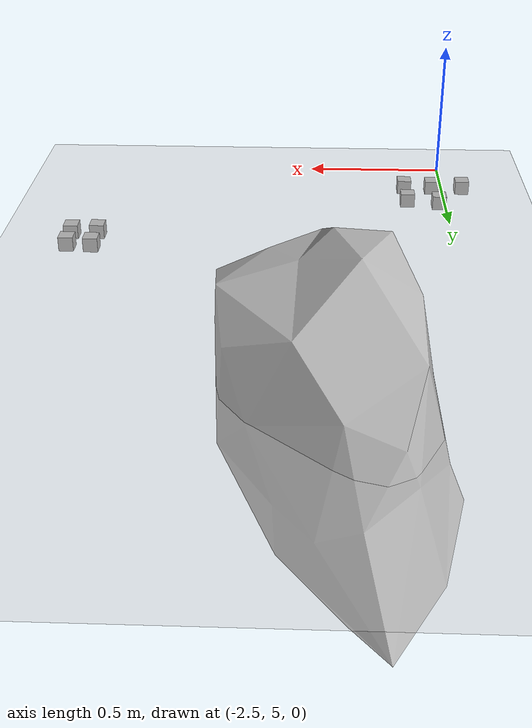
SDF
<sdf version="1.6">
 <world name="default">
  <model name="boulder2_2_clone_clone_0">
   <link name="link_1">
    <inertial>
     <mass>1</mass>
     <inertia>
      <ixx>0.166667</ixx>
      <ixy>0</ixy>
      <ixz>0</ixz>
      <iyy>0.166667</iyy>
      <iyz>0</iyz>
      <izz>0.166667</izz>
     </inertia>
    </inertial>
    <visual name="visual">
     <geometry><mesh><uri>model://boulder2/boulder2.dae</uri><scale>1 1 1</scale></mesh></geometry>
     <material>
      <lighting>1</lighting>
      <script><uri>model://boulder2</uri><name>boulder2/Diffuse</name></script>
     </material>
    </visual>
    <collision name="collision">
     <geometry><mesh><uri>model://boulder2/boulder2.dae</uri><scale>1 1 1</scale></mesh></geometry>
     <surface>
      <friction>
       <ode><mu>1</mu><mu2>1</mu2><fdir1>0 0 0</fdir1><slip1>0</slip1><slip2>0</slip2></ode>
       <torsional>
        <coefficient>1</coefficient>
        <patch_radius>0</patch_radius>
        <surface_radius>0</surface_radius>
        <use_patch_radius>1</use_patch_radius>
        <ode><slip>0</slip></ode>
       </torsional>
      </friction>
      <bounce><restitution_coefficient>0</restitution_coefficient><threshold>1e+06</threshold></bounce>
      <contact>
       <collide_without_contact>0</collide_without_contact>
       <collide_without_contact_bitmask>1</collide_without_contact_bitmask>
       <collide_bitmask>1</collide_bitmask>
       <ode>
        <soft_cfm>0</soft_cfm>
        <soft_erp>0.2</soft_erp>
        <kp>1e+13</kp>
        <kd>1</kd>
        <max_vel>0.01</max_vel>
        <min_depth>0</min_depth>
       </ode>
       <bullet>
        <split_impulse>1</split_impulse>
        <split_impulse_penetration_threshold>-0.01</split_impulse_penetration_threshold>
        <soft_cfm>0</soft_cfm>
        <soft_erp>0.2</soft_erp>
        <kp>1e+13</kp>
        <kd>1</kd>
       </bullet>
      </contact>
     </surface>
    </collision>
   </link>
   <static>1</static>
   <pose>-2.01647 6.38627 0.064215 -0.59155 0.472681 0</pose>
  </model>
  <model name="ground_plane">
   <static>1</static>
   <link name="link">
    <collision name="collision">
     <geometry><plane><normal>0 0 1</normal><size>100 100</size></plane></geometry>
     <surface><friction><ode><mu>100</mu><mu2>50</mu2></ode></friction></surface>
    </collision>
    <visual name="visual">
     <cast_shadows>0</cast_shadows>
     <geometry><plane><normal>0 0 1</normal><size>100 100</size></plane></geometry>
     <material>
      <script><uri>file://media/materials/scripts/gazebo.material</uri><name>Gazebo/Grey</name></script>
     </material>
    </visual>
   </link>
  </model>
  <model name="at0_56">
   <static>0</static>
   <link name="link">
    <inertial>
     <mass>0.01</mass>
     <inertia><ixx>4e-05</ixx><ixy>0</ixy><ixz>0</ixz><iyy>4e-05</iyy><iyz>0</iyz><izz>4e-05</izz></inertia>
    </inertial>
    <visual name="visual">
     <geometry><box><size>0.05 0.05 0.05</size></box></geometry>
     <material>
      <script>
       <uri>model://at0/materials/scripts</uri>
       <uri>model://at0/materials/textures</uri>
       <name>at0/Diffuse</name>
      </script>
     </material>
    </visual>
    <collision name="collision">
     <geometry><box><size>0.05 0.05 0.05</size></box></geometry>
     <surface><friction><ode><mu>0.8</mu><mu2>0.7</mu2></ode></friction></surface>
    </collision>
   </link>
   <pose>-2.46785 5.39426 0.045 0 -0 0</pose>
  </model>
  <model name="at0_57">
   <static>0</static>
   <link name="link">
    <inertial>
     <mass>0.01</mass>
     <inertia><ixx>4e-05</ixx><ixy>0</ixy><ixz>0</ixz><iyy>4e-05</iyy><iyz>0</iyz><izz>4e-05</izz></inertia>
    </inertial>
    <visual name="visual">
     <geometry><box><size>0.05 0.05 0.05</size></box></geometry>
     <material>
      <script>
       <uri>model://at0/materials/scripts</uri>
       <uri>model://at0/materials/textures</uri>
       <name>at0/Diffuse</name>
      </script>
     </material>
    </visual>
    <collision name="collision">
     <geometry><box><size>0.05 0.05 0.05</size></box></geometry>
     <surface><friction><ode><mu>0.8</mu><mu2>0.7</mu2></ode></friction></surface>
    </collision>
   </link>
   <pose>-2.35325 5.37789 0.045 0 -0 0</pose>
  </model>
  <model name="at0_58">
   <static>0</static>
   <link name="link">
    <inertial>
     <mass>0.01</mass>
     <inertia><ixx>4e-05</ixx><ixy>0</ixy><ixz>0</ixz><iyy>4e-05</iyy><iyz>0</iyz><izz>4e-05</izz></inertia>
    </inertial>
    <visual name="visual">
     <geometry><box><size>0.05 0.05 0.05</size></box></geometry>
     <material>
      <script>
       <uri>model://at0/materials/scripts</uri>
       <uri>model://at0/materials/textures</uri>
       <name>at0/Diffuse</name>
      </script>
     </material>
    </visual>
    <collision name="collision">
     <geometry><box><size>0.05 0.05 0.05</size></box></geometry>
     <surface><friction><ode><mu>0.8</mu><mu2>0.7</mu2></ode></friction></surface>
    </collision>
   </link>
   <pose>-2.56467 5.25392 0.045 0 -0 0</pose>
  </model>
  <model name="at0_59">
   <static>0</static>
   <link name="link">
    <inertial>
     <mass>0.01</mass>
     <inertia><ixx>4e-05</ixx><ixy>0</ixy><ixz>0</ixz><iyy>4e-05</iyy><iyz>0</iyz><izz>4e-05</izz></inertia>
    </inertial>
    <visual name="visual">
     <geometry><box><size>0.05 0.05 0.05</size></box></geometry>
     <material>
      <script>
       <uri>model://at0/materials/scripts</uri>
       <uri>model://at0/materials/textures</uri>
       <name>at0/Diffuse</name>
      </script>
     </material>
    </visual>
    <collision name="collision">
     <geometry><box><size>0.05 0.05 0.05</size></box></geometry>
     <surface><friction><ode><mu>0.8</mu><mu2>0.7</mu2></ode></friction></surface>
    </collision>
   </link>
   <pose>-2.45158 5.25697 0.045 0 -0 0</pose>
  </model>
  <model name="at0_60">
   <static>0</static>
   <link name="link">
    <inertial>
     <mass>0.01</mass>
     <inertia><ixx>4e-05</ixx><ixy>0</ixy><ixz>0</ixz><iyy>4e-05</iyy><iyz>0</iyz><izz>4e-05</izz></inertia>
    </inertial>
    <visual name="visual">
     <geometry><box><size>0.05 0.05 0.05</size></box></geometry>
     <material>
      <script>
       <uri>model://at0/materials/scripts</uri>
       <uri>model://at0/materials/textures</uri>
       <name>at0/Diffuse</name>
      </script>
     </material>
    </visual>
    <collision name="collision">
     <geometry><box><size>0.05 0.05 0.05</size></box></geometry>
     <surface><friction><ode><mu>0.8</mu><mu2>0.7</mu2></ode></friction></surface>
    </collision>
   </link>
   <pose>-2.34864 5.25448 0.045 0 -0 0</pose>
  </model>
  <model name="at0_61">
   <static>0</static>
   <link name="link">
    <inertial>
     <mass>0.01</mass>
     <inertia><ixx>4e-05</ixx><ixy>0</ixy><ixz>0</ixz><iyy>4e-05</iyy><iyz>0</iyz><izz>4e-05</izz></inertia>
    </inertial>
    <visual name="visual">
     <geometry><box><size>0.05 0.05 0.05</size></box></geometry>
     <material>
      <script>
       <uri>model://at0/materials/scripts</uri>
       <uri>model://at0/materials/textures</uri>
       <name>at0/Diffuse</name>
      </script>
     </material>
    </visual>
    <collision name="collision">
     <geometry><box><size>0.05 0.05 0.05</size></box></geometry>
     <surface><friction><ode><mu>0.8</mu><mu2>0.7</mu2></ode></friction></surface>
    </collision>
   </link>
   <pose>-1.17407 5.77775 0.045 0 -0 0</pose>
  </model>
  <model name="at0_62">
   <static>0</static>
   <link name="link">
    <inertial>
     <mass>0.01</mass>
     <inertia><ixx>4e-05</ixx><ixy>0</ixy><ixz>0</ixz><iyy>4e-05</iyy><iyz>0</iyz><izz>4e-05</izz></inertia>
    </inertial>
    <visual name="visual">
     <geometry><box><size>0.05 0.05 0.05</size></box></geometry>
     <material>
      <script>
       <uri>model://at0/materials/scripts</uri>
       <uri>model://at0/materials/textures</uri>
       <name>at0/Diffuse</name>
      </script>
     </material>
    </visual>
    <collision name="collision">
     <geometry><box><size>0.05 0.05 0.05</size></box></geometry>
     <surface><friction><ode><mu>0.8</mu><mu2>0.7</mu2></ode></friction></surface>
    </collision>
   </link>
   <pose>-1.17237 5.6844 0.045 0 -0 0</pose>
  </model>
  <model name="at0_63">
   <static>0</static>
   <link name="link">
    <inertial>
     <mass>0.01</mass>
     <inertia><ixx>4e-05</ixx><ixy>0</ixy><ixz>0</ixz><iyy>4e-05</iyy><iyz>0</iyz><izz>4e-05</izz></inertia>
    </inertial>
    <visual name="visual">
     <geometry><box><size>0.05 0.05 0.05</size></box></geometry>
     <material>
      <script>
       <uri>model://at0/materials/scripts</uri>
       <uri>model://at0/materials/textures</uri>
       <name>at0/Diffuse</name>
      </script>
     </material>
    </visual>
    <collision name="collision">
     <geometry><box><size>0.05 0.05 0.05</size></box></geometry>
     <surface><friction><ode><mu>0.8</mu><mu2>0.7</mu2></ode></friction></surface>
    </collision>
   </link>
   <pose>-1.25785 5.78169 0.045 0 -0 0</pose>
  </model>
  <model name="at0_64">
   <static>0</static>
   <link name="link">
    <inertial>
     <mass>0.01</mass>
     <inertia><ixx>4e-05</ixx><ixy>0</ixy><ixz>0</ixz><iyy>4e-05</iyy><iyz>0</iyz><izz>4e-05</izz></inertia>
    </inertial>
    <visual name="visual">
     <geometry><box><size>0.05 0.05 0.05</size></box></geometry>
     <material>
      <script>
       <uri>model://at0/materials/scripts</uri>
       <uri>model://at0/materials/textures</uri>
       <name>at0/Diffuse</name>
      </script>
     </material>
    </visual>
    <collision name="collision">
     <geometry><box><size>0.05 0.05 0.05</size></box></geometry>
     <surface><friction><ode><mu>0.8</mu><mu2>0.7</mu2></ode></friction></surface>
    </collision>
   </link>
   <pose>-1.26189 5.67858 0.045 0 -0 0</pose>
  </model>
 </world>
</sdf>
